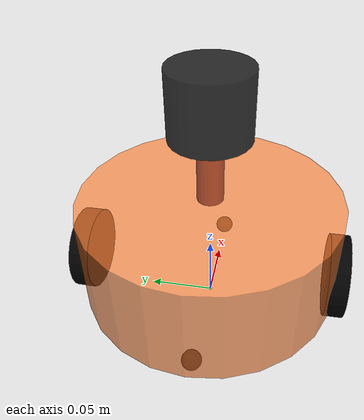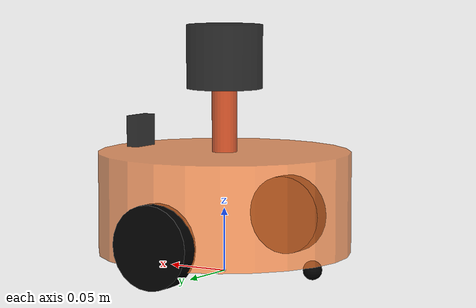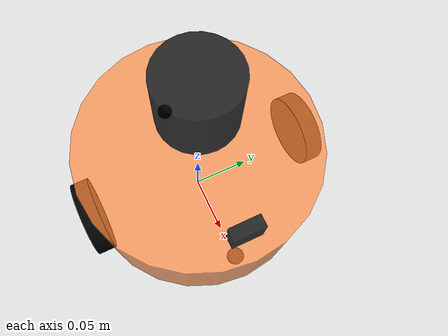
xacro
<robot name="mycar"
    xmlns:xacro="http://wiki.ros.org/xacro">
    <!-- 包含底盘，摄像头与雷达的xacro文件  -->
    <xacro:include filename="demo05_car_base.urdf.xacro"/>
    <xacro:include filename="demo06_car_camera.urdf.xacro"/>
    <xacro:include filename="demo07_car_laser.urdf.xacro"/>
</robot>

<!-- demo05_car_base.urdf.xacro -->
<robot name="mycar"
    xmlns:xacro="http://wiki.ros.org/xacro">

    <xacro:property name="footprint_radius" value="0.001" />

    <!-- 1.添加base_footprint -->
    <link name="base_footprint">
        <visual>
            <geometry>
                <sphere radius="${footprint_radius}"/>
            </geometry>
        </visual>
    </link>

    <xacro:property name="base_radius" value="0.1" />
    <xacro:property name="base_length" value="0.08" />
    <xacro:property name="lidi" value="0.015" />
    <xacro:property name="base_joint_z" value="${base_length/2 + lidi}" />
    <!-- 2. 底盘  -->
    <!-- 2.1. link -->
    <link name="base_link">
        <visual>
            <geometry>
                <cylinder radius="0.1" length="0.08" />
            </geometry>

            <origin xyz="0 0 0" rpy="0 0 0" />

            <material name="baselink_color">
                <color rgba="1 0.5 0.2 0.7" />
            </material>
        </visual>
    </link>
    <!-- 2.2. joint -->
    <joint name="link2footprint" type="fixed">
        <parent link="base_footprint" />
        <child link="base_link" />
        <!-- 关节z上的设置 = 车体高度/2 + 离地间距 -->
        <origin xyz="0 0 0.055" rpy="0 0 0" />
    </joint>

    <xacro:property name="wheel_radius" value="0.0325" />
    <!-- 半径 -->
    <xacro:property name="wheel_length" value="0.015" />
    <!-- 宽度 -->
    <xacro:property name="PI" value="3.1415926" />
    <!-- PI -->
    <xacro:property name="wheel_joint_z" value="${-(base_length/2 + lidi - wheel_radius)}" />
    <!-- z偏移量 -->

    <!--
        wheel_name: left or right
        flag: 1 or -1
     -->
    <xacro:macro name="wheel_func" params="wheel_name flag">
        <!-- 3.驱动轮  -->
        <link name="${wheel_name}_wheel">
            <visual>
                <geometry>
                    <cylinder radius="${wheel_radius}" length="${wheel_length}" />
                </geometry>

                <origin xyz="0 0 0" rpy="${PI/2} 0 0" />

                <material name="wheel_color">
                    <color rgba="0 0 0 0.9" />
                </material>
            </visual>
        </link>

        <joint name="${wheel_name}2link" type="continuous">
            <parent link="base_link" />
            <child link="${wheel_name}_wheel" />
            <!--
                x 无偏移
                y 车体半径
                z z = 车体高度/2 + 离地间距 - 车轮半径
             -->
            <origin xyz="0 ${0.1 * flag} ${wheel_joint_z}" rpy="0 0 0" />
            <axis xyz="0 1 0" />
        </joint>
    </xacro:macro>

    <xacro:property name="small_wheel_radius" value="0.0075" />
    <!-- 半径 -->
    <!-- z的偏移量 = 车体高度/2 + 离地间距 - 万向轮半径 -->
    <xacro:property name="small_joint_z" value="${-(base_length/2 + lidi - small_wheel_radius)}" />

    <xacro:macro name="small_wheel_func" params="small_wheel_name flag">
        <!-- 4.万向轮  -->
        <!-- 4.1 link -->
        <link name="${small_wheel_name}_wheel">
            <visual>
                <geometry>
                    <sphere radius="${small_wheel_radius}" />
                </geometry>

                <origin xyz="0 0 0" rpy="0 0 0" />

                <material name="wheel_color">
                    <color rgba="0 0 0 0.9" />
                </material>
            </visual>
        </link>
        <!-- 4.2 joint -->
        <joint name="${small_wheel_name}2link" type="continuous">
            <parent link="base_link" />
            <child link="${small_wheel_name}_wheel" />
            <origin xyz="${0.08 * flag} 0 ${small_joint_z}" rpy="0 0 0" />
            <axis xyz="0 1 0" />
        </joint>
    </xacro:macro>

    <!-- 调用宏 -->
    <xacro:wheel_func wheel_name="left" flag="1" />
    <xacro:wheel_func wheel_name="right" flag="-1" />
    <xacro:small_wheel_func small_wheel_name="front" flag="1" />
    <xacro:small_wheel_func small_wheel_name="back" flag="-1" />

</robot>

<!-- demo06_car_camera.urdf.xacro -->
<!-- 摄像头相关的 xacro 文件 -->
<robot name="my_camera"
    xmlns:xacro="http://wiki.ros.org/xacro">
    <!-- 摄像头属性 -->
    <xacro:property name="camera_length" value="0.01" />
    <!-- 摄像头长度(x) -->
    <xacro:property name="camera_width" value="0.025" />
    <!-- 摄像头宽度(y) -->
    <xacro:property name="camera_height" value="0.025" />
    <!-- 摄像头高度(z) -->
    <xacro:property name="camera_x" value="0.08" />
    <!-- 摄像头安装的x坐标 -->
    <xacro:property name="camera_y" value="0.0" />
    <!-- 摄像头安装的y坐标 -->
    <!-- 这里的base_length在demo05_car_base.urdf.xacro已经定义过，使用时需要先include demo05_car_base.urdf.xacro -->
    <xacro:property name="camera_z" value="${base_length / 2 + camera_height / 2}" />
    <!-- 摄像头安装的z坐标:底盘高度 / 2 + 摄像头高度 / 2  -->

    <!-- 摄像头关节以及link -->
    <link name="camera">
        <visual>
            <geometry>
                <box size="${camera_length} ${camera_width} ${camera_height}" />
            </geometry>
            <origin xyz="0.0 0.0 0.0" rpy="0.0 0.0 0.0" />
            <material name="black">
                <color rgba="0 0 0 0.8" />
            </material>
        </visual>
    </link>

    <joint name="camera2base_link" type="fixed">
        <parent link="base_link" />
        <child link="camera" />
        <origin xyz="${camera_x} ${camera_y} ${camera_z}" />
    </joint>
</robot>

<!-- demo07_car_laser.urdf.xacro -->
<!--
    小车底盘添加雷达
-->
<robot name="my_laser"
    xmlns:xacro="http://wiki.ros.org/xacro">

    <!-- 雷达支架 -->
    <xacro:property name="support_length" value="0.05" />
    <!-- 支架长度 -->
    <xacro:property name="support_radius" value="0.01" />
    <!-- 支架半径 -->
    <xacro:property name="support_x" value="0.0" />
    <!-- 支架安装的x坐标 -->
    <xacro:property name="support_y" value="0.0" />
    <!-- 支架安装的y坐标 -->
    <xacro:property name="support_z" value="${base_length / 2 + support_length / 2}" />
    <!-- 支架安装的z坐标:底盘高度 / 2 + 支架高度 / 2  -->

    <link name="support">
        <visual>
            <geometry>
                <cylinder radius="${support_radius}" length="${support_length}" />
            </geometry>
            <origin xyz="0.0 0.0 0.0" rpy="0.0 0.0 0.0" />
            <material name="red">
                <color rgba="0.8 0.2 0.0 0.8" />
            </material>
        </visual>
    </link>

    <joint name="support2base_link" type="fixed">
        <parent link="base_link" />
        <child link="support" />
        <origin xyz="${support_x} ${support_y} ${support_z}" />
    </joint>

    <!-- 雷达属性 -->
    <xacro:property name="laser_length" value="0.05" />
    <!-- 雷达长度 -->
    <xacro:property name="laser_radius" value="0.03" />
    <!-- 雷达半径 -->
    <xacro:property name="laser_x" value="0.0" />
    <!-- 雷达安装的x坐标 -->
    <xacro:property name="laser_y" value="0.0" />
    <!-- 雷达安装的y坐标 -->
    <xacro:property name="laser_z" value="${support_length / 2 + laser_length / 2}" />
    <!-- 雷达安装的z坐标:支架高度 / 2 + 雷达高度 / 2  -->

    <!-- 雷达关节以及link -->
    <link name="laser">
        <visual>
            <geometry>
                <cylinder radius="${laser_radius}" length="${laser_length}" />
            </geometry>
            <origin xyz="0.0 0.0 0.0" rpy="0.0 0.0 0.0" />
            <material name="black">
                <color rgba="0 0 0 0.8" />
            </material>
        </visual>
    </link>

    <joint name="laser2support" type="fixed">
        <parent link="support" />
        <child link="laser" />
        <origin xyz="${laser_x} ${laser_y} ${laser_z}" />
    </joint>
</robot>
